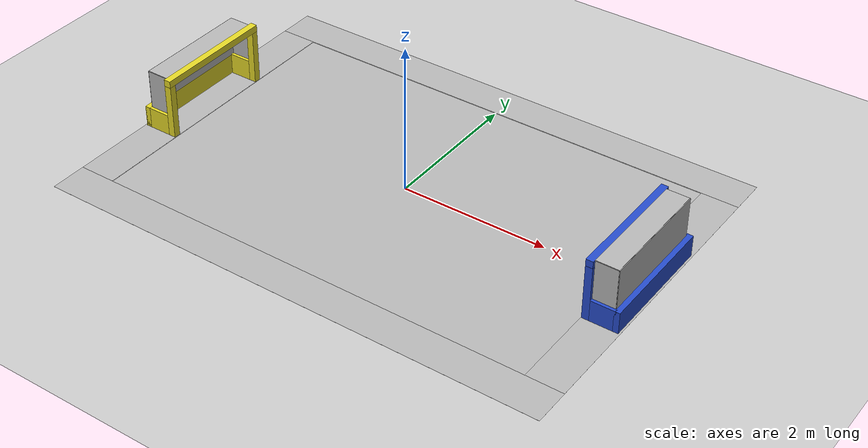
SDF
<?xml version="1.0" ?>
<sdf version='1.5'>
  <world name='RoboCup15MSL'>
<!-- scene -->
    <scene>
      <ambient>0.4 0.4 0.4 1</ambient>
      <background>0.7 0.7 0.7 1</background>
      <shadows>0</shadows>
    </scene>

<!-- spherical_coordinates -->
    <spherical_coordinates>
      <surface_model>EARTH_WGS84</surface_model>
      <latitude_deg>0</latitude_deg>
      <longitude_deg>0</longitude_deg>
      <elevation>0</elevation>
      <heading_deg>0</heading_deg>
    </spherical_coordinates>

<!-- lighting -->
 <light type="directional" name="sun">
    <cast_shadows>0</cast_shadows>

    <pose>0 0 10 0 0 0</pose>
    <diffuse>0.8 0.8 0.8 1</diffuse>
    <specular>0.2 0.2 0.2 1</specular>

    <attenuation>
      <range>1000</range>
      <constant>0.9</constant>
      <linear>0.01</linear>
      <quadratic>0.001</quadratic>
    </attenuation>

    <direction>-0.5 0.1 -0.9</direction>
  </light>

<!-- gui -->
    <gui fullscreen='0'>
      <camera name='user_camera'>
        <pose>0 -16 10 0 0.53 1.57</pose>
        <view_controller>orbit</view_controller>
      </camera>
    </gui>

<!-- physics -->
    <physics type='ode'>
      <max_step_size>0.015</max_step_size>
      <real_time_update_rate>60</real_time_update_rate>
      <gravity>0 0 -9.8</gravity>
    </physics>

<!-- The same as model://ground_plane -->
    <model name='ground_plane'>
      <static>true</static>
      <link name='link'>//
        <collision name='collision'>
          <geometry>
            <plane>
              <normal>0 0 1</normal>
              <size>100 100</size>
            </plane>
          </geometry>
          <surface>
            <friction>
              <ode>
                <mu>100</mu>
                <mu2>50</mu2>
              </ode>
            </friction>
            <contact>
              <ode/>
            </contact>
            <bounce/>
          </surface>
          <max_contacts>10</max_contacts>
        </collision>
        <visual name='visual'>
          <cast_shadows>0</cast_shadows>
          <geometry>
            <plane>
              <normal>0 0 1</normal>
              <size>100 100</size>
            </plane>
          </geometry>
          <material>
            <script>
              <uri>file://media/materials/scripts/gazebo.material</uri>
              <name>Gazebo/Grey</name>
            </script>
          </material>
        </visual>
        <velocity_decay>
          <linear>0</linear>
          <angular>0</angular>
        </velocity_decay>
        <self_collide>0</self_collide>
        <kinematic>0</kinematic>
        <gravity>1</gravity>
      </link>
    </model>

<!-- RoboCup 2015 MSL Field -->
    <include>
        <pose>0 0 0 0 0 0</pose>
        <uri>model://FIRA_Field</uri>
        <name>field</name>
        <static>true</static>
    </include>

<!-- RoboCup 2015 MSL Goal left -->
    <include>
        <pose>-3.13 0 0.01 0 0 3.14 </pose>
        <uri>model://FIRA_Goal</uri>
        <name>left_goal</name>
        <static>true</static>
    </include>

<!-- RoboCup 2015 MSL Goal right -->
    <include>
        <pose>3.13 0 0.01 0 0 0 </pose>
        <uri>model://FIRA_Goal_blue</uri>
        <name>right_goal</name>
        <static>true</static>
    </include>
<!-- FIRA Obstacle -->

    <!-- goal -->
  </world>
</sdf>

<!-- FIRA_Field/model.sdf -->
<sdf version="1.4">
  <model name="FIRA_Field">
    <static>true</static>

    <link name="chassis">
      <pose>0 0 0.01 0 0 0</pose>
      <collision name="collision">
        <geometry>
          <plane>
            <normal>0 0 1</normal>
            <size>6 4</size>
          </plane>
        </geometry>
        <surface>
          <friction>
            <ode>
              <mu>100</mu>
              <mu2>50</mu2>
            </ode>
          </friction>
        </surface>
      </collision>

      <visual name="carpet">
        <cast_shadows>false</cast_shadows>
        <geometry>
          <plane>
            <normal>0 0 1</normal>
            <size>6 4</size>
          </plane>
        </geometry>
        <material>
          <script>
            <uri>file://materials/scripts/</uri>
            <uri>file://materials/textures/</uri>
            <name>RoboCup/Carpet</name>
          </script>
        </material>
      </visual>

       <visual name="base1">
        <pose>0 2.25 0.01 0 0 0</pose>
        <cast_shadows>false</cast_shadows>
        <geometry>
          <plane>
            <normal>0 0 1</normal>
            <size>7.0 0.5</size>
          </plane>
        </geometry>
        <material>
          <script>
            <uri>file://materials/scripts/</uri>
            <uri>file://materials/textures/</uri>
            <name>RoboCup/FieldBorder</name>
          </script>
        </material>
      </visual>
      <visual name="base2">
        <pose>0 -2.25 0.01 0 0 0</pose>
        <cast_shadows>false</cast_shadows>
        <geometry>
          <plane>
            <normal>0 0 1</normal>
            <size>7.0 0.5</size>
          </plane>
        </geometry>
        <material>
          <script>
            <uri>file://materials/scripts/</uri>
            <uri>file://materials/textures/</uri>
            <name>RoboCup/FieldBorder</name>
          </script>
        </material>
      </visual>
      <visual name="base3">
        <pose>3.25 0 0.01 0 0 0</pose>
        <cast_shadows>false</cast_shadows>
        <geometry>
          <plane>
            <normal>0 0 1</normal>
            <size>0.5 4.0</size>
          </plane>
        </geometry>
        <material>
          <script>
            <uri>file://materials/scripts/</uri>
            <uri>file://materials/textures/</uri>
            <name>RoboCup/FieldBorder</name>
          </script>
        </material>
      </visual>
      <visual name="base4">
        <pose>-3.25 0 0.01 0 0 0</pose>
        <cast_shadows>false</cast_shadows>
        <geometry>
          <plane>
            <normal>0 0 1</normal>
            <size>0.5 4.0</size>
          </plane>
        </geometry>
        <material>
          <script>
            <uri>file://materials/scripts/</uri>
            <uri>file://materials/textures/</uri>
            <name>RoboCup/FieldBorder</name>
          </script>
        </material>
      </visual>
    </link>

  </model>
</sdf>

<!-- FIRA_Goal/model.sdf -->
<sdf version="1.4">
  <model name="FIRA_Goal">
    <static>true</static>

    <link name="left_post">
      <pose>-0.078125 0.796875 0.375 0 0 0</pose>
      <collision name="left_post_collision">
        <geometry>
          <box><size>0.09375 0.09375 0.75</size></box>
        </geometry>
      </collision>
      <visual name="visual">
        <geometry>
          <box><size>0.09375 0.09375 0.75</size></box>
        </geometry>
        <material>
          <script>
            <uri>file://media/materials/scripts/gazebo.material</uri>
            <name>Gazebo/Yellow</name>
          </script>
        </material>
      </visual>
      <sensor name="RFsrRL" type="contact">
        <always_on>1</always_on>
        <update_rate>20</update_rate>
        <visualize>true</visualize>
        <contact>
            <collision>left_post_collision</collision>
        </contact>
        <plugin name="gazebo_ros_bumper_ controller" filename="libgazebo_ros_bumper.so">
            <alwaysOn>true</alwaysOn>
            <updateRate>20</updateRate>
            <bumperTopicName>bumper</bumperTopicName>
            <frameName>symbol</frameName>
        </plugin>
      </sensor>
    </link>

    <link name="right_post">
      <pose>-0.078125 -0.796875 0.375 0 0 0</pose>
      <collision name="right_post_collision">
        <geometry>
          <box><size>0.09375 0.09375 0.75</size></box>
        </geometry>
      </collision>
      <visual name="visual">
        <geometry>
          <box><size>0.09375 0.09375 0.75</size></box>
        </geometry>
        <material>
          <script>
            <uri>file://media/materials/scripts/gazebo.material</uri>
            <name>Gazebo/Yellow</name>
          </script>
        </material>
      </visual>
      <sensor name="RFsrRL" type="contact">
        <always_on>1</always_on>
        <update_rate>20</update_rate>
        <visualize>true</visualize>
        <contact>
            <collision>right_post_collision</collision>
        </contact>
        <plugin name="gazebo_ros_bumper_ controller" filename="libgazebo_ros_bumper.so">
            <alwaysOn>true</alwaysOn>
            <updateRate>20</updateRate>
            <bumperTopicName>bumper</bumperTopicName>
            <frameName>symbol</frameName>
        </plugin>
      </sensor>
    </link>

    <link name="crossbar">
      <pose>-0.078125 0 0.796875 0 0 0</pose>
      <collision name="crossbar_collision">
        <geometry>
          <box><size>0.09375 1.6875 0.09375</size></box>
        </geometry>
      </collision>
      <visual name="visual">
        <geometry>
          <box><size>0.09375 1.6875 0.09375</size></box>
        </geometry>
        <material>
          <script>
            <uri>file://media/materials/scripts/gazebo.material</uri>
            <name>Gazebo/Yellow</name>
          </script>
        </material>
      </visual>
      <sensor name="RFsrRL" type="contact">
        <always_on>1</always_on>
        <update_rate>20</update_rate>
        <visualize>true</visualize>
        <contact>
            <collision>crossbar_collision</collision>
        </contact>
        <plugin name="gazebo_ros_bumper_ controller" filename="libgazebo_ros_bumper.so">
            <alwaysOn>true</alwaysOn>
            <updateRate>20</updateRate>
            <bumperTopicName>bumper</bumperTopicName>
            <frameName>symbol</frameName>
        </plugin>
      </sensor>
    </link>

    <link name="left_support_horiz_lower">
      <pose>0.15625 0.796875 0.15 0 0 0</pose>
      <collision name="left_support_horiz_lower_collision">
        <geometry>
          <box><size>0.375 0.09375 0.3</size></box>
        </geometry>
      </collision>
      <visual name="visual">
        <geometry>
          <box><size>0.375 0.09375 0.3</size></box>
        </geometry>
        <material>
          <script>
            <uri>file://media/materials/scripts/gazebo.material</uri>
            <name>Gazebo/Yellow</name>
          </script>
        </material>
      </visual>
      <sensor name="RFsrRL" type="contact">
        <always_on>1</always_on>
        <update_rate>20</update_rate>
        <visualize>true</visualize>
        <contact>
            <collision>left_support_horiz_lower_collision</collision>
        </contact>
        <plugin name="gazebo_ros_bumper_ controller" filename="libgazebo_ros_bumper.so">
            <alwaysOn>true</alwaysOn>
            <updateRate>20</updateRate>
            <bumperTopicName>bumper</bumperTopicName>
            <frameName>symbol</frameName>
        </plugin>
      </sensor>
    </link>

    <link name="right_support_horiz_lower">
      <pose>0.15625 -0.796875 0.15 0 0 0</pose>
      <collision name="right_support_horiz_lower_collision">
        <geometry>
          <box><size>0.375 0.09375 0.3</size></box>
        </geometry>
      </collision>
      <visual name="visual">
        <geometry>
          <box><size>0.375 0.09375 0.3</size></box>
        </geometry>
        <material>
          <script>
            <uri>file://media/materials/scripts/gazebo.material</uri>
            <name>Gazebo/Yellow</name>
          </script>
        </material>
      </visual>
      <sensor name="RFsrRL" type="contact">
        <always_on>1</always_on>
        <update_rate>20</update_rate>
        <visualize>true</visualize>
        <contact>
            <collision>right_support_horiz_lower_collision</collision>
        </contact>
        <plugin name="gazebo_ros_bumper_ controller" filename="libgazebo_ros_bumper.so">
            <alwaysOn>true</alwaysOn>
            <updateRate>20</updateRate>
            <bumperTopicName>bumper</bumperTopicName>
            <frameName>symbol</frameName>
        </plugin>
      </sensor>
    </link>

        <link name="center_support_horiz_lower">
      <pose>0.309375 0 0.15 0 0 0</pose>
      <collision name="center_support_horiz_lower_collision">
        <geometry>
          <box><size>0.075 1.6875 0.3</size></box>
        </geometry>
      </collision>
      <visual name="visual">
        <geometry>
        <box><size>0.075 1.6875 0.3</size></box>
        </geometry>
        <material>
          <script>
            <uri>file://media/materials/scripts/gazebo.material</uri>
            <name>Gazebo/Yellow</name>
          </script>
        </material>
      </visual>
      <sensor name="RFsrRL" type="contact">
        <always_on>1</always_on>
        <update_rate>20</update_rate>
        <visualize>true</visualize>
        <contact>
            <collision>center_support_horiz_lower_collision</collision>
        </contact>
        <plugin name="gazebo_ros_bumper_ controller" filename="libgazebo_ros_bumper.so">
            <alwaysOn>true</alwaysOn>
            <updateRate>20</updateRate>
            <bumperTopicName>bumper</bumperTopicName>
            <frameName>symbol</frameName>
        </plugin>
      </sensor>
    </link>

    <link name="center_net">
      <pose>0.271875 0 0.561875 0 0 0</pose>
      <visual name="visual">
        <geometry>
          <box><size>0.01 1.59375 0.54375</size></box>
        </geometry>
        <material>
          <script>
            <uri>file://materials/scripts/</uri>
            <uri>file://materials/textures/</uri>
            <name>RoboCup/Net</name>
          </script>
        </material>
      </visual>
    </link>

    <link name="left_net">
      <pose>0.08125 0.796875 0.561875 0 0 0</pose>
      <visual name="visual">
        <geometry>
          <box>
            <size>0.375 0.01 0.54375</size>
          </box>
        </geometry>
        <material>
          <script>
            <uri>file://materials/scripts/</uri>
            <uri>file://materials/textures/</uri>
            <name>RoboCup/Net</name>
          </script>
        </material>
      </visual>
    </link>

    <link name="right_net">
      <pose>0.08125 -0.796875 0.561875 0 0 0</pose>
      <visual name="visual">
        <geometry>
          <box>
            <size>0.375 0.01 0.54375</size>
          </box>
        </geometry>
        <material>
          <script>
            <uri>file://materials/scripts/</uri>
            <uri>file://materials/textures/</uri>
            <name>RoboCup/Net</name>
          </script>
        </material>
      </visual>
    </link>

    <link name='upper_net'>
      <pose>0.08125 0 0.83375 0 0 0</pose>
      <visual name='visual'>
        <geometry>
          <box><size>0.375 1.59375 0.01</size></box>
        </geometry>
        <material>
          <script>
            <uri>file://materials/scripts/</uri>
            <uri>file://materials/textures/</uri>
            <name>RoboCup/Net</name>
          </script>
        </material>
      </visual>
    </link>

  </model>
</sdf>

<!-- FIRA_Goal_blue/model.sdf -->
<sdf version="1.4">
  <model name="FIRA_Goal">
    <static>true</static>

    <link name="left_post">
      <pose>-0.078125 0.796875 0.375 0 0 0</pose>
      <collision name="left_post_collision">
        <geometry>
          <box><size>0.09375 0.09375 0.75</size></box>
        </geometry>
      </collision>
      <visual name="visual">
        <geometry>
          <box><size>0.09375 0.09375 0.75</size></box>
        </geometry>
        <material>
          <script>
            <uri>file://media/materials/scripts/gazebo.material</uri>
            <name>Gazebo/Blue</name>
          </script>
        </material>
      </visual>
      <sensor name="RFsrRL" type="contact">
        <always_on>1</always_on>
        <update_rate>20</update_rate>
        <visualize>true</visualize>
        <contact>
            <collision>left_post_collision</collision>
        </contact>
        <plugin name="gazebo_ros_bumper_ controller" filename="libgazebo_ros_bumper.so">
            <alwaysOn>true</alwaysOn>
            <updateRate>20</updateRate>
            <bumperTopicName>bumper</bumperTopicName>
            <frameName>symbol</frameName>
        </plugin>
      </sensor>
    </link>

    <link name="right_post">
      <pose>-0.078125 -0.796875 0.375 0 0 0</pose>
      <collision name="right_post_collision">
        <geometry>
          <box><size>0.09375 0.09375 0.75</size></box>
        </geometry>
      </collision>
      <visual name="visual">
        <geometry>
          <box><size>0.09375 0.09375 0.75</size></box>
        </geometry>
        <material>
          <script>
            <uri>file://media/materials/scripts/gazebo.material</uri>
            <name>Gazebo/Blue</name>
          </script>
        </material>
      </visual>
      <sensor name="RFsrRL" type="contact">
        <always_on>1</always_on>
        <update_rate>20</update_rate>
        <visualize>true</visualize>
        <contact>
            <collision>right_post_collision</collision>
        </contact>
        <plugin name="gazebo_ros_bumper_ controller" filename="libgazebo_ros_bumper.so">
            <alwaysOn>true</alwaysOn>
            <updateRate>20</updateRate>
            <bumperTopicName>bumper</bumperTopicName>
            <frameName>symbol</frameName>
        </plugin>
      </sensor>
    </link>

    <link name="crossbar">
      <pose>-0.078125 0 0.796875 0 0 0</pose>
      <collision name="crossbar_collision">
        <geometry>
          <box><size>0.09375 1.6875 0.09375</size></box>
        </geometry>
      </collision>
      <visual name="visual">
        <geometry>
          <box><size>0.09375 1.6875 0.09375</size></box>
        </geometry>
        <material>
          <script>
            <uri>file://media/materials/scripts/gazebo.material</uri>
            <name>Gazebo/Blue</name>
          </script>
        </material>
      </visual>
      <sensor name="RFsrRL" type="contact">
        <always_on>1</always_on>
        <update_rate>20</update_rate>
        <visualize>true</visualize>
        <contact>
            <collision>crossbar_collision</collision>
        </contact>
        <plugin name="gazebo_ros_bumper_ controller" filename="libgazebo_ros_bumper.so">
            <alwaysOn>true</alwaysOn>
            <updateRate>20</updateRate>
            <bumperTopicName>bumper</bumperTopicName>
            <frameName>symbol</frameName>
        </plugin>
      </sensor>
    </link>

    <link name="left_support_horiz_lower">
      <pose>0.15625 0.796875 0.15 0 0 0</pose>
      <collision name="left_support_horiz_lower_collision">
        <geometry>
          <box><size>0.375 0.09375 0.3</size></box>
        </geometry>
      </collision>
      <visual name="visual">
        <geometry>
          <box><size>0.375 0.09375 0.3</size></box>
        </geometry>
        <material>
          <script>
            <uri>file://media/materials/scripts/gazebo.material</uri>
            <name>Gazebo/Blue</name>
          </script>
        </material>
      </visual>
      <sensor name="RFsrRL" type="contact">
        <always_on>1</always_on>
        <update_rate>20</update_rate>
        <visualize>true</visualize>
        <contact>
            <collision>left_support_horiz_lower_collision</collision>
        </contact>
        <plugin name="gazebo_ros_bumper_ controller" filename="libgazebo_ros_bumper.so">
            <alwaysOn>true</alwaysOn>
            <updateRate>20</updateRate>
            <bumperTopicName>bumper</bumperTopicName>
            <frameName>symbol</frameName>
        </plugin>
      </sensor>
    </link>

    <link name="right_support_horiz_lower">
      <pose>0.15625 -0.796875 0.15 0 0 0</pose>
      <collision name="right_support_horiz_lower_collision">
        <geometry>
          <box><size>0.375 0.09375 0.3</size></box>
        </geometry>
      </collision>
      <visual name="visual">
        <geometry>
          <box><size>0.375 0.09375 0.3</size></box>
        </geometry>
        <material>
          <script>
            <uri>file://media/materials/scripts/gazebo.material</uri>
            <name>Gazebo/Blue</name>
          </script>
        </material>
      </visual>
      <sensor name="RFsrRL" type="contact">
        <always_on>1</always_on>
        <update_rate>20</update_rate>
        <visualize>true</visualize>
        <contact>
            <collision>right_support_horiz_lower_collision</collision>
        </contact>
        <plugin name="gazebo_ros_bumper_ controller" filename="libgazebo_ros_bumper.so">
            <alwaysOn>true</alwaysOn>
            <updateRate>20</updateRate>
            <bumperTopicName>bumper</bumperTopicName>
            <frameName>symbol</frameName>
        </plugin>
      </sensor>
    </link>

        <link name="center_support_horiz_lower">
      <pose>0.309375 0 0.15 0 0 0</pose>
      <collision name="center_support_horiz_lower_collision">
        <geometry>
          <box><size>0.075 1.6875 0.3</size></box>
        </geometry>
      </collision>
      <visual name="visual">
        <geometry>
        <box><size>0.075 1.6875 0.3</size></box>
        </geometry>
        <material>
          <script>
            <uri>file://media/materials/scripts/gazebo.material</uri>
            <name>Gazebo/Blue</name>
          </script>
        </material>
      </visual>
      <sensor name="RFsrRL" type="contact">
        <always_on>1</always_on>
        <update_rate>20</update_rate>
        <visualize>true</visualize>
        <contact>
            <collision>center_support_horiz_lower_collision</collision>
        </contact>
        <plugin name="gazebo_ros_bumper_ controller" filename="libgazebo_ros_bumper.so">
            <alwaysOn>true</alwaysOn>
            <updateRate>20</updateRate>
            <bumperTopicName>bumper</bumperTopicName>
            <frameName>symbol</frameName>
        </plugin>
      </sensor>
    </link>

    <link name="center_net">
      <pose>0.271875 0 0.561875 0 0 0</pose>
      <visual name="visual">
        <geometry>
          <box><size>0.01 1.59375 0.54375</size></box>
        </geometry>
        <material>
          <script>
            <uri>file://materials/scripts/</uri>
            <uri>file://materials/textures/</uri>
            <name>RoboCup/Net</name>
          </script>
        </material>
      </visual>
    </link>

    <link name="left_net">
      <pose>0.08125 0.796875 0.561875 0 0 0</pose>
      <visual name="visual">
        <geometry>
          <box>
            <size>0.375 0.01 0.54375</size>
          </box>
        </geometry>
        <material>
          <script>
            <uri>file://materials/scripts/</uri>
            <uri>file://materials/textures/</uri>
            <name>RoboCup/Net</name>
          </script>
        </material>
      </visual>
    </link>

    <link name="right_net">
      <pose>0.08125 -0.796875 0.561875 0 0 0</pose>
      <visual name="visual">
        <geometry>
          <box>
            <size>0.375 0.01 0.54375</size>
          </box>
        </geometry>
        <material>
          <script>
            <uri>file://materials/scripts/</uri>
            <uri>file://materials/textures/</uri>
            <name>RoboCup/Net</name>
          </script>
        </material>
      </visual>
    </link>

    <link name='upper_net'>
      <pose>0.08125 0 0.83375 0 0 0</pose>
      <visual name='visual'>
        <geometry>
          <box><size>0.375 1.59375 0.01</size></box>
        </geometry>
        <material>
          <script>
            <uri>file://materials/scripts/</uri>
            <uri>file://materials/textures/</uri>
            <name>RoboCup/Net</name>
          </script>
        </material>
      </visual>
    </link>

  </model>
</sdf>
